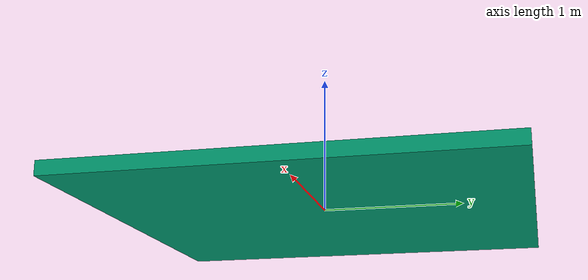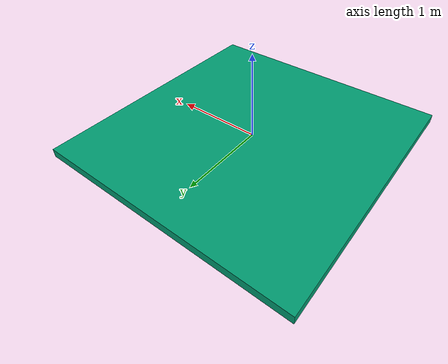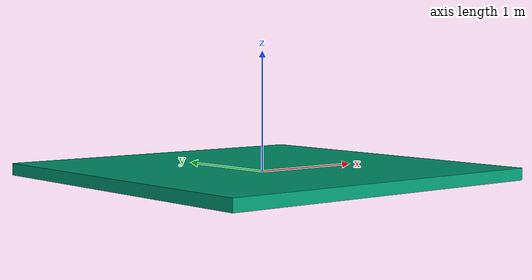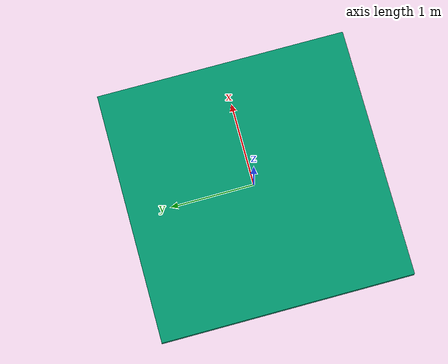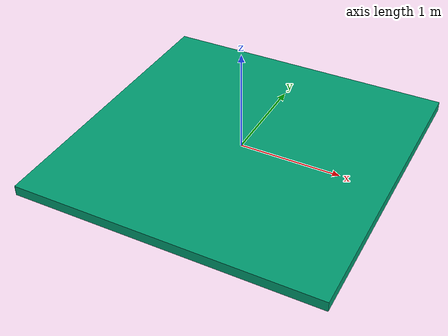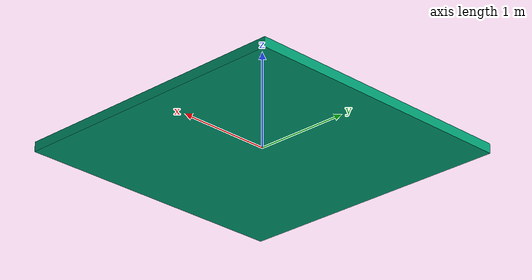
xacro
<?xml version="1.0" encoding="utf-8"?>

<robot
  name="plate_bot" xmlns:xacro="http://www.ros.org/wiki/xacro">

    <xacro:property name="body_height" value="0"/>

    <xacro:property name="deg2rad"  value ="${(pi/180.0)}"/>
    <xacro:property name="damping"  value="100.0"/>
    <xacro:property name="friction" value="100.0"/>
    <xacro:property name="roll_lower" value="${(-10.0*deg2rad)}"/>
    <xacro:property name="roll_upper" value="${(10.0*deg2rad)}"/>
    <xacro:property name="effort"   value="1000"/>
    <xacro:property name="velocity" value="10.0"/>

    <xacro:macro name="inertial_matrix" params="mass">
      <inertial>
      	<mass value="${mass}" />
        <inertia ixx="0.1" ixy="0.0" ixz="0.0" iyy="0.1" iyz="0.0" izz="0.1" />
      </inertial>
   </xacro:macro>

    <xacro:macro name="transmission_block" params="joint_name">
      <transmission name="tran2">
        <type>transmission_interface/SimpleTransmission</type>
        <joint name="${joint_name}">
          <hardwareInterface>hardware_interface/EffortJointInterface</hardwareInterface>
        </joint>
        <actuator name="motor1">
          <hardwareInterface>hardware_interface/EffortJointInterface</hardwareInterface>
          <mechanicalReduction>1</mechanicalReduction>
        </actuator>
      </transmission>
    </xacro:macro>

    <link name="world"/>

    <joint name="ROLL" type="revolute">
        <parent link="world"/>
        <child link="roll"/>
        <origin rpy="0 0 0" xyz="0 0 ${body_height}"/>
        <axis xyz="1 0 0" />
    <limit
        lower="${roll_lower}"
        upper="${roll_upper}"
        effort="${effort}"
        velocity="${velocity}"/>
    <dynamics damping="${damping}" friction="${friction}"/>
    </joint>

    <link name="roll">
       <inertial>
        <origin
          xyz="0 0 0"
          rpy="0 0 0" />
        <mass value="1" />
        <inertia
          ixx="1" ixy="0" ixz="0"
          iyy="1" iyz="0" izz="1" />
      </inertial>
      <collision>
        <origin
          xyz="0 0 0"
          rpy="0 0 0" />
        <geometry>
          <box size="0.01 0.01 0.01"/>
        </geometry>
      </collision>
    </link>

    <joint name="PITCH" type="revolute">
        <parent link="roll"/>
        <child link="Body"/>
        <origin rpy="0 0 0" xyz="0 0 0"/>
        <axis
      xyz="0 1 0" />
    <limit
        lower="${roll_lower}"
        upper="${roll_upper}"
        effort="${effort}"
        velocity="${velocity}"/>
    <dynamics damping="${damping}" friction="${friction}"/>
    </joint>

    <link name="Body">
      <inertial>
        <origin
          xyz="0 0 0"
          rpy="0 0 0" />
        <mass value="1" />
        <inertia
          ixx="1" ixy="0" ixz="0"
          iyy="1" iyz="0" izz="1" />
      </inertial>
      <visual>
        <origin
          xyz="0 0 0"
          rpy="0 0 0" />
          <geometry>
            <box size="3 3 0.1"/>
          </geometry>
      </visual>
      <collision>
        <origin
          xyz="0 0 0"
          rpy="0 0 0" />
        <geometry>
          <box size="3 3 0.1"/>
        </geometry>
        <surface>
        <friction>
          <ode>
            <mu>1</mu>
            <mu2>1</mu2>
            <fdir1>1 0 0</fdir1>
          </ode>
        </friction>
      </surface>
      </collision>
    </link>

    <xacro:transmission_block joint_name="ROLL"/>
    <xacro:transmission_block joint_name="PITCH"/>

    <gazebo>
      <plugin name="gazebo_ros_control" filename="libgazebo_ros_control.so">
        <robotNamespace>/plate_bot</robotNamespace>
      </plugin>
    </gazebo>

</robot>
